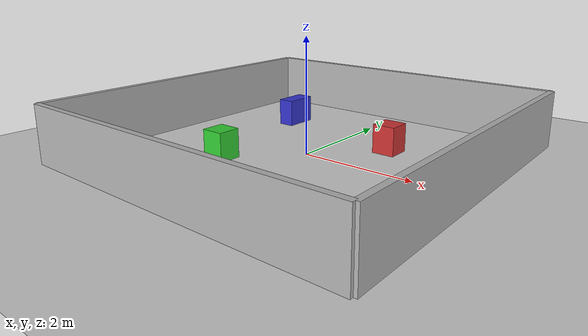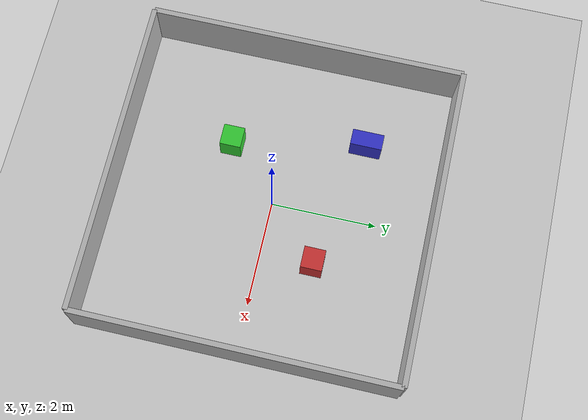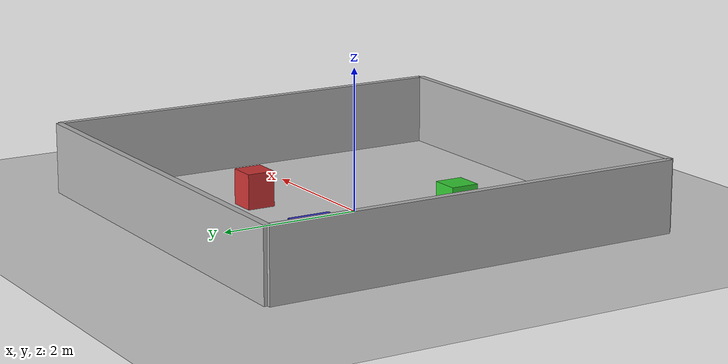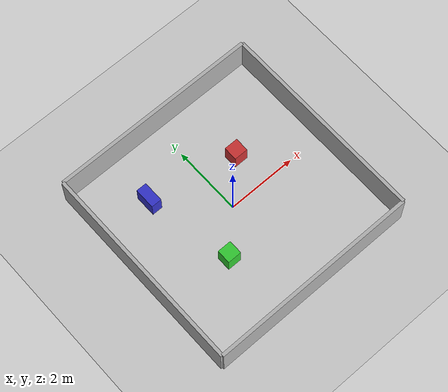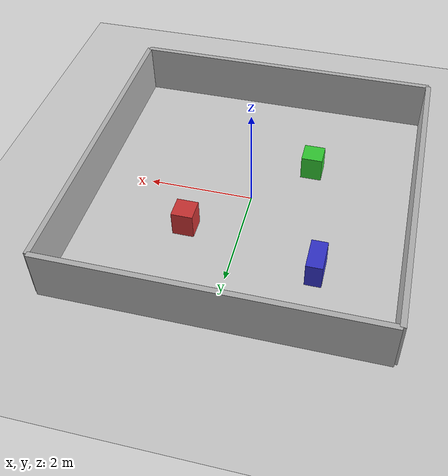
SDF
<?xml version="1.0"?>
<sdf version="1.6">
  <world name="arena">

    <include><uri>model://ground_plane</uri></include>
    <include><uri>model://sun</uri></include>

    <!-- outer walls (6 m x 6 m arena) -->
    <model name="wall_north">
      <static>true</static>
      <pose>0 3 0.5 0 0 0</pose>
      <link name="link">
        <collision name="c"><geometry><box><size>6 0.1 1</size></box></geometry></collision>
        <visual name="v">
          <geometry><box><size>6 0.1 1</size></box></geometry>
          <material><ambient>0.7 0.7 0.7 1</ambient></material>
        </visual>
      </link>
    </model>

    <model name="wall_south">
      <static>true</static>
      <pose>0 -3 0.5 0 0 0</pose>
      <link name="link">
        <collision name="c"><geometry><box><size>6 0.1 1</size></box></geometry></collision>
        <visual name="v">
          <geometry><box><size>6 0.1 1</size></box></geometry>
          <material><ambient>0.7 0.7 0.7 1</ambient></material>
        </visual>
      </link>
    </model>

    <model name="wall_east">
      <static>true</static>
      <pose>3 0 0.5 0 0 1.5708</pose>
      <link name="link">
        <collision name="c"><geometry><box><size>6 0.1 1</size></box></geometry></collision>
        <visual name="v">
          <geometry><box><size>6 0.1 1</size></box></geometry>
          <material><ambient>0.7 0.7 0.7 1</ambient></material>
        </visual>
      </link>
    </model>

    <model name="wall_west">
      <static>true</static>
      <pose>-3 0 0.5 0 0 1.5708</pose>
      <link name="link">
        <collision name="c"><geometry><box><size>6 0.1 1</size></box></geometry></collision>
        <visual name="v">
          <geometry><box><size>6 0.1 1</size></box></geometry>
          <material><ambient>0.7 0.7 0.7 1</ambient></material>
        </visual>
      </link>
    </model>

    <!-- interior obstacle 1 (red box) -->
    <model name="box1">
      <static>true</static>
      <pose>1 1 0.25 0 0 0</pose>
      <link name="link">
        <collision name="c"><geometry><box><size>0.4 0.4 0.5</size></box></geometry></collision>
        <visual name="v">
          <geometry><box><size>0.4 0.4 0.5</size></box></geometry>
          <material><ambient>0.8 0.2 0.2 1</ambient></material>
        </visual>
      </link>
    </model>

    <!-- interior obstacle 2 (green box) -->
    <model name="box2">
      <static>true</static>
      <pose>-1 -1 0.25 0 0 0</pose>
      <link name="link">
        <collision name="c"><geometry><box><size>0.4 0.4 0.5</size></box></geometry></collision>
        <visual name="v">
          <geometry><box><size>0.4 0.4 0.5</size></box></geometry>
          <material><ambient>0.2 0.8 0.2 1</ambient></material>
        </visual>
      </link>
    </model>

    <!-- interior obstacle 3 (blue box) -->
    <model name="box3">
      <static>true</static>
      <pose>-1.5 1.5 0.25 0 0 0</pose>
      <link name="link">
        <collision name="c"><geometry><box><size>0.3 0.6 0.5</size></box></geometry></collision>
        <visual name="v">
          <geometry><box><size>0.3 0.6 0.5</size></box></geometry>
          <material><ambient>0.2 0.2 0.8 1</ambient></material>
        </visual>
      </link>
    </model>

  </world>
</sdf>
